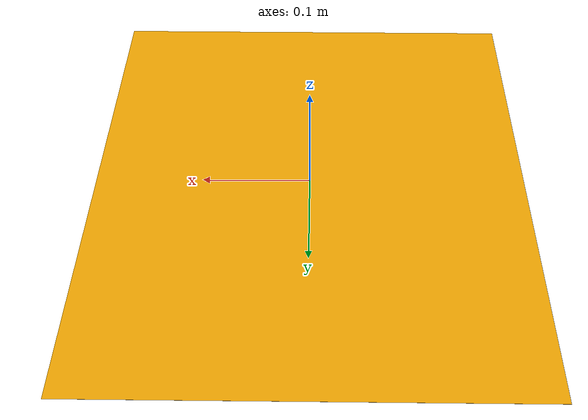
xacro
<?xml version="1.0"?>
<robot name="table" xmlns:xacro="http://ros.org/wiki/xacro">
  <xacro:arg name="x" default="0" />
  <xacro:arg name="y" default="0" />
  <xacro:arg name="z" default="0" />
  <xacro:arg name="l" default="0.4" />
  <xacro:arg name="h" default="0.0001" />
  <xacro:arg name="w" default="0.5" />
  <link name="table">
    <inertial>
      <origin xyz="$(arg x) $(arg y) $(arg z)" />
      <mass value="1.0" />
      <inertia ixx="1.0" ixy="0.0" ixz="0.0" iyy="1.0" iyz="0.0" izz="1.0" />
    </inertial>
    <visual>
      <origin xyz="$(arg x) $(arg y) $(arg z)" />
      <geometry>
        <box size="$(arg l) $(arg w) $(arg h)" />
      </geometry>
    </visual>
    <collision>
      <origin xyz="$(arg x) $(arg y) $(arg z)" />
      <geometry>
        <box size="$(arg l) $(arg w) $(arg h)" />
      </geometry>
    </collision>
    <surface>
      <friction>
        <ode>
          <mu>100</mu>
          <mu2>100</mu2>
        </ode>
      </friction>
    </surface>
  </link>
  <gazebo reference="table">
    <visual>
      <material>
        <xacro:include filename="$(find ros2_transformers)/tasks/sim/object_descriptions/urdf/colors.urdf.xacro" />
        <xacro:color color="blue" />
      </material>
    </visual>
  </gazebo>
</robot>
